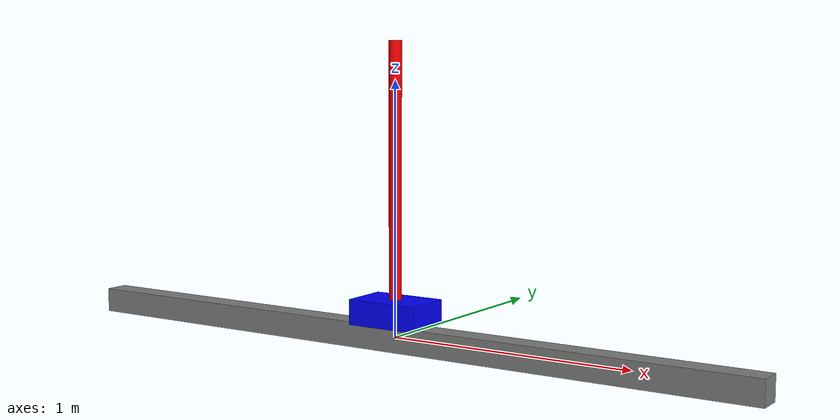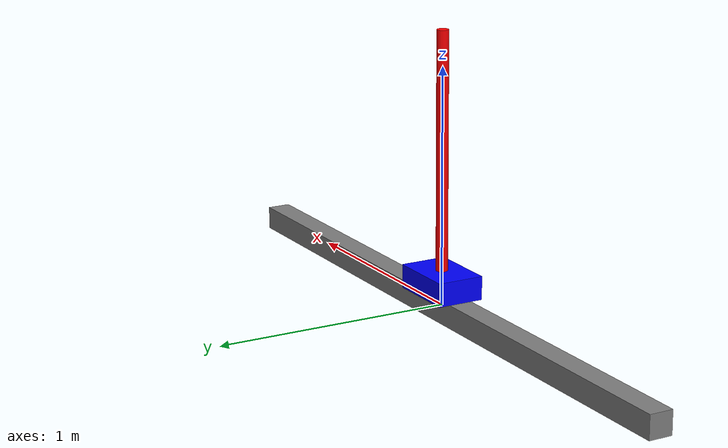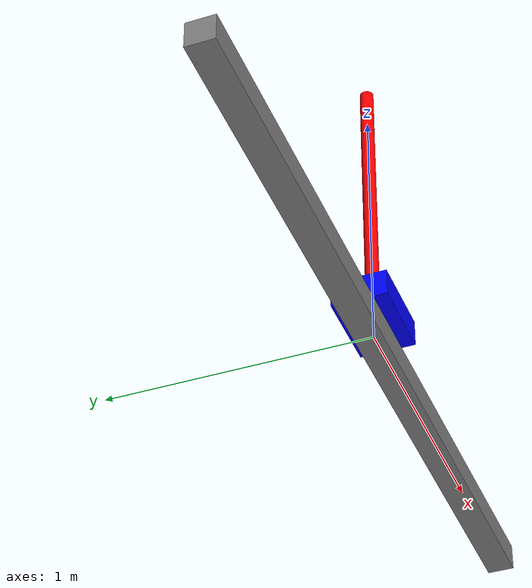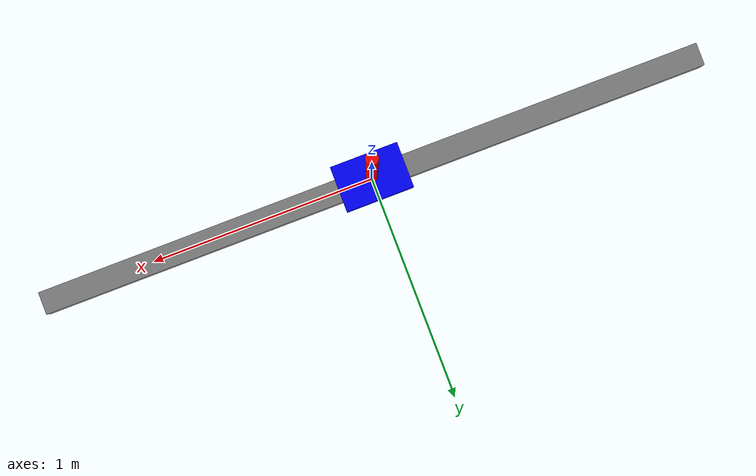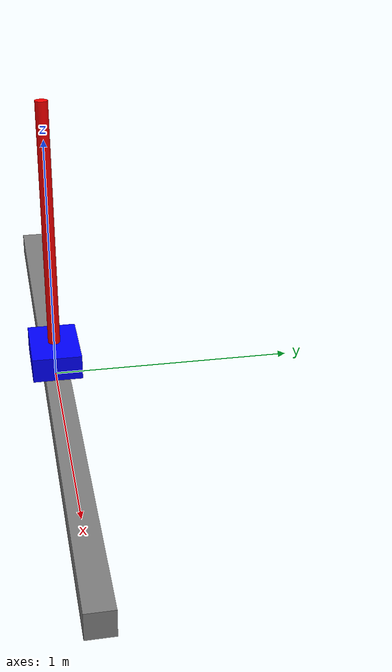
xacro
<?xml version="1.0"?>
<robot name="cart_pole" xmlns:xacro="http://www.ros.org/wiki/xacro">

  <!-- Constants -->
  <xacro:property name="cart_mass" value="1.0"/>
  <xacro:property name="pole_mass" value="0.1"/>
  <xacro:property name="pole_length" value="1.0"/>

  <!-- Base Link (World) -->
  <link name="world"/>

  <!-- Rail -->
  <link name="rail">
    <visual>
      <geometry>
        <box size="3.0 0.1 0.1"/>
      </geometry>
      <material name="gray">
        <color rgba="0.5 0.5 0.5 1"/>
      </material>
    </visual>
    <collision>
      <geometry>
        <box size="3.0 0.1 0.1"/>
      </geometry>
    </collision>
  </link>

  <joint name="world_to_rail" type="fixed">
    <parent link="world"/>
    <child link="rail"/>
    <origin xyz="0 0 0" rpy="0 0 0"/>
  </joint>

  <!-- Cart -->
  <link name="cart">
    <inertial>
      <mass value="${cart_mass}"/>
      <inertia ixx="0.01" ixy="0.0" ixz="0.0" iyy="0.01" iyz="0.0" izz="0.01"/>
    </inertial>
    <visual>
      <geometry>
        <box size="0.3 0.2 0.1"/>
      </geometry>
      <material name="blue">
        <color rgba="0 0 1 1"/>
      </material>
    </visual>
    <collision>
      <geometry>
        <box size="0.3 0.2 0.1"/>
      </geometry>
    </collision>
  </link>

  <joint name="cart_slider" type="prismatic">
    <parent link="rail"/>
    <child link="cart"/>
    <axis xyz="1 0 0"/>
    <origin xyz="0 0 0.1"/>
    <limit lower="-1.5" upper="1.5" effort="1000.0" velocity="1000.0"/>
    <dynamics damping="0.1" friction="0.1"/>
  </joint>

  <!-- Pole -->
  <link name="pole">
    <inertial>
      <mass value="${pole_mass}"/>
      <origin xyz="0 0 ${pole_length/2}"/>
      <inertia
        ixx="${pole_mass * pole_length * pole_length / 12}"
        ixy="0.0"
        ixz="0.0"
        iyy="${pole_mass * pole_length * pole_length / 12}"
        iyz="0.0"
        izz="0.001"/>
    </inertial>
    <visual>
      <origin xyz="0 0 ${pole_length/2}"/>
      <geometry>
        <cylinder radius="0.025" length="${pole_length}"/>
      </geometry>
      <material name="red">
        <color rgba="1 0 0 1"/>
      </material>
    </visual>
    <collision>
      <origin xyz="0 0 ${pole_length/2}"/>
      <geometry>
        <cylinder radius="0.025" length="${pole_length}"/>
      </geometry>
    </collision>
  </link>

  <joint name="pole_hinge" type="revolute">
    <parent link="cart"/>
    <child link="pole"/>
    <axis xyz="0 1 0"/>
    <origin xyz="0 0 0.05"/>
    <limit lower="-3.14159" upper="3.14159" effort="1000.0" velocity="1000.0"/>
    <dynamics damping="0.1" friction="0.1"/>
  </joint>

  <!-- Gazebo plugins -->
  <gazebo>
    <plugin name="gazebo_ros_control" filename="libgazebo_ros_control.so">
      <robotNamespace>/cart_pole</robotNamespace>
      <robotSimType>gazebo_ros_control/DefaultRobotHWSim</robotSimType>
    </plugin>
  </gazebo>

  <!-- Gazebo colors -->
  <gazebo reference="rail">
    <material>Gazebo/Gray</material>
  </gazebo>
  <gazebo reference="cart">
    <material>Gazebo/Blue</material>
  </gazebo>
  <gazebo reference="pole">
    <material>Gazebo/Red</material>
  </gazebo>

  <!-- Transmissions for ROS control -->
  <transmission name="cart_trans">
    <type>transmission_interface/SimpleTransmission</type>
    <joint name="cart_slider">
      <hardwareInterface>hardware_interface/EffortJointInterface</hardwareInterface>
    </joint>
    <actuator name="cart_motor">
      <hardwareInterface>hardware_interface/EffortJointInterface</hardwareInterface>
      <mechanicalReduction>1</mechanicalReduction>
    </actuator>
  </transmission>

  <transmission name="pole_trans">
    <type>transmission_interface/SimpleTransmission</type>
    <joint name="pole_hinge">
      <hardwareInterface>hardware_interface/EffortJointInterface</hardwareInterface>
    </joint>
    <actuator name="pole_motor">
      <hardwareInterface>hardware_interface/EffortJointInterface</hardwareInterface>
      <mechanicalReduction>1</mechanicalReduction>
    </actuator>
  </transmission>

</robot>
